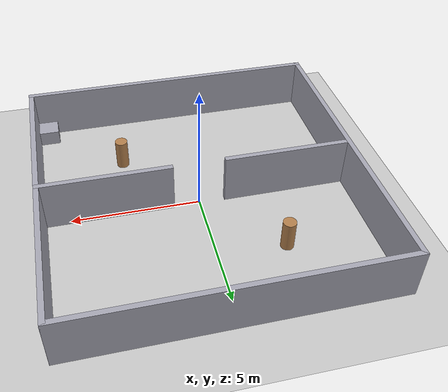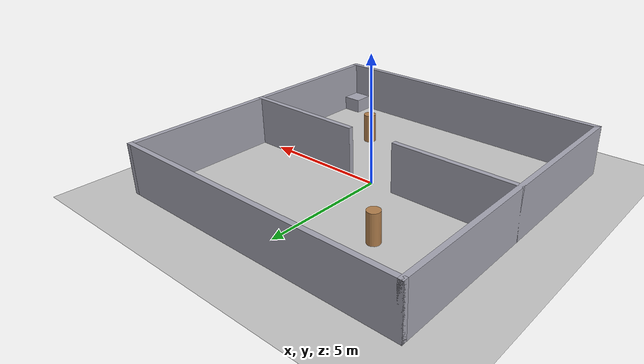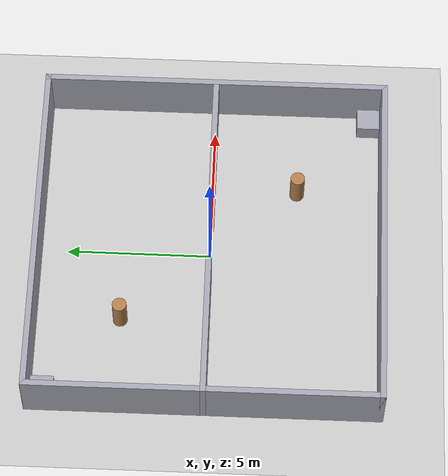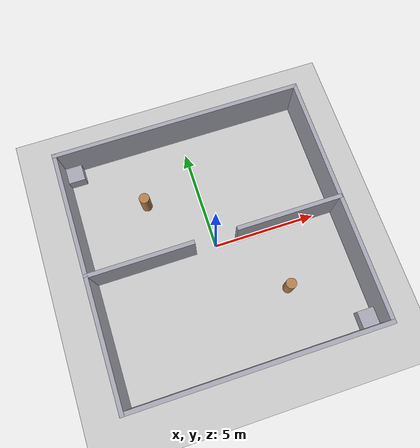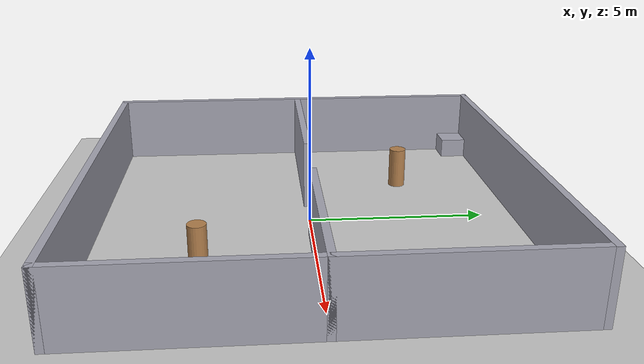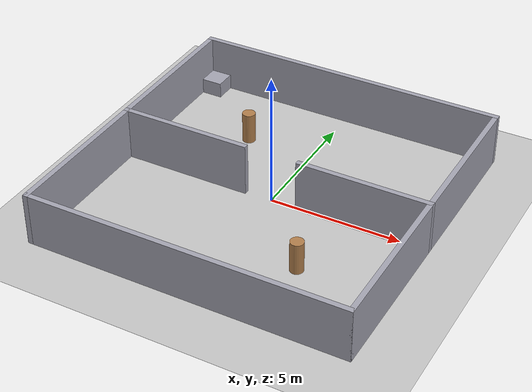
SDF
<?xml version="1.0" ?>
<sdf version="1.9">
  <world name="testworld_simple">
    <gravity>0 0 -9.81</gravity>
    <physics name="1ms" type="ignored">
      <max_step_size>0.010</max_step_size>
      <real_time_factor>1.0</real_time_factor>
    </physics>

    <plugin
      filename="gz-sim-physics-system"
      name="gz::sim::systems::Physics" />
    <plugin
      filename="gz-sim-user-commands-system"
      name="gz::sim::systems::UserCommands" />
    <plugin
      filename="gz-sim-scene-broadcaster-system"
      name="gz::sim::systems::SceneBroadcaster" />
    <plugin
      filename="gz-sim-contact-system"
      name="gz::sim::systems::Contact" />
    <plugin
      filename="gz-sim-imu-system"
      name="gz::sim::systems::Imu" />
    <plugin
      filename="gz-sim-sensors-system"
      name="gz::sim::systems::Sensors">
      <render_engine>ogre2</render_engine>
    </plugin>

    <light name="sun" type="directional">
      <cast_shadows>false</cast_shadows>
      <pose>0 0 12 0 0 0</pose>
      <diffuse>0.8 0.8 0.8 1</diffuse>
      <specular>0.2 0.2 0.2 1</specular>
      <attenuation>
        <range>1000</range>
        <constant>0.9</constant>
        <linear>0.01</linear>
        <quadratic>0.001</quadratic>
      </attenuation>
      <direction>-0.5 0.1 -0.9</direction>
    </light>

    <model name="ground_plane">
      <static>true</static>
      <link name="link">
        <collision name="collision">
          <geometry>
            <plane>
              <normal>0 0 1</normal>
              <size>60 60</size>
            </plane>
          </geometry>
        </collision>
        <visual name="visual">
          <geometry>
            <plane>
              <normal>0 0 1</normal>
              <size>60 60</size>
            </plane>
          </geometry>
          <material>
            <ambient>0.78 0.78 0.78 1</ambient>
            <diffuse>0.78 0.78 0.78 1</diffuse>
          </material>
        </visual>
      </link>
    </model>

    <model name="outer_wall_north">
      <static>true</static>
      <pose>0 6 1.0 0 0 0.0</pose>
      <link name="link">
        <collision name="collision"><geometry><box><size>12.2 0.2 2.0</size></box></geometry></collision>
        <visual name="visual">
          <geometry><box><size>12.2 0.2 2.0</size></box></geometry>
          <material><ambient>0.55 0.55 0.6 1</ambient><diffuse>0.65 0.65 0.7 1</diffuse></material>
        </visual>
      </link>
    </model>

    <model name="outer_wall_south">
      <static>true</static>
      <pose>0 -6 1.0 0 0 0.0</pose>
      <link name="link">
        <collision name="collision"><geometry><box><size>12.2 0.2 2.0</size></box></geometry></collision>
        <visual name="visual">
          <geometry><box><size>12.2 0.2 2.0</size></box></geometry>
          <material><ambient>0.55 0.55 0.6 1</ambient><diffuse>0.65 0.65 0.7 1</diffuse></material>
        </visual>
      </link>
    </model>

    <model name="outer_wall_east">
      <static>true</static>
      <pose>6 0 1.0 0 0 0.0</pose>
      <link name="link">
        <collision name="collision"><geometry><box><size>0.2 12.2 2.0</size></box></geometry></collision>
        <visual name="visual">
          <geometry><box><size>0.2 12.2 2.0</size></box></geometry>
          <material><ambient>0.55 0.55 0.6 1</ambient><diffuse>0.65 0.65 0.7 1</diffuse></material>
        </visual>
      </link>
    </model>

    <model name="outer_wall_west">
      <static>true</static>
      <pose>-6 0 1.0 0 0 0.0</pose>
      <link name="link">
        <collision name="collision"><geometry><box><size>0.2 12.2 2.0</size></box></geometry></collision>
        <visual name="visual">
          <geometry><box><size>0.2 12.2 2.0</size></box></geometry>
          <material><ambient>0.55 0.55 0.6 1</ambient><diffuse>0.65 0.65 0.7 1</diffuse></material>
        </visual>
      </link>
    </model>

    <model name="divider_west">
      <static>true</static>
      <pose>-3.55 0 1.0 0 0 0.0</pose>
      <link name="link">
        <collision name="collision"><geometry><box><size>5.1 0.2 2.0</size></box></geometry></collision>
        <visual name="visual">
          <geometry><box><size>5.1 0.2 2.0</size></box></geometry>
          <material><ambient>0.55 0.55 0.6 1</ambient><diffuse>0.65 0.65 0.7 1</diffuse></material>
        </visual>
      </link>
    </model>

    <model name="divider_east">
      <static>true</static>
      <pose>3.55 0 1.0 0 0 0.0</pose>
      <link name="link">
        <collision name="collision"><geometry><box><size>5.1 0.2 2.0</size></box></geometry></collision>
        <visual name="visual">
          <geometry><box><size>5.1 0.2 2.0</size></box></geometry>
          <material><ambient>0.55 0.55 0.6 1</ambient><diffuse>0.65 0.65 0.7 1</diffuse></material>
        </visual>
      </link>
    </model>

    <model name="pillar_north">
      <static>true</static>
      <pose>-2.6 3.0 0.6 0 0 0</pose>
      <link name="link">
        <collision name="collision"><geometry><cylinder><radius>0.25</radius><length>1.2</length></cylinder></geometry></collision>
        <visual name="visual">
          <geometry><cylinder><radius>0.25</radius><length>1.2</length></cylinder></geometry>
          <material><ambient>0.6 0.4 0.25 1</ambient><diffuse>0.7 0.5 0.3 1</diffuse></material>
        </visual>
      </link>
    </model>

    <model name="pillar_south">
      <static>true</static>
      <pose>2.6 -3.0 0.6 0 0 0</pose>
      <link name="link">
        <collision name="collision"><geometry><cylinder><radius>0.25</radius><length>1.2</length></cylinder></geometry></collision>
        <visual name="visual">
          <geometry><cylinder><radius>0.25</radius><length>1.2</length></cylinder></geometry>
          <material><ambient>0.6 0.4 0.25 1</ambient><diffuse>0.7 0.5 0.3 1</diffuse></material>
        </visual>
      </link>
    </model>

    <model name="crate_nw">
      <static>true</static>
      <pose>-5.5 5.5 0.3 0 0 0.0</pose>
      <link name="link">
        <collision name="collision"><geometry><box><size>0.8 0.8 0.6</size></box></geometry></collision>
        <visual name="visual">
          <geometry><box><size>0.8 0.8 0.6</size></box></geometry>
          <material><ambient>0.55 0.55 0.6 1</ambient><diffuse>0.65 0.65 0.7 1</diffuse></material>
        </visual>
      </link>
    </model>

    <model name="crate_se">
      <static>true</static>
      <pose>5.5 -5.5 0.3 0 0 0.0</pose>
      <link name="link">
        <collision name="collision"><geometry><box><size>0.8 0.8 0.6</size></box></geometry></collision>
        <visual name="visual">
          <geometry><box><size>0.8 0.8 0.6</size></box></geometry>
          <material><ambient>0.55 0.55 0.6 1</ambient><diffuse>0.65 0.65 0.7 1</diffuse></material>
        </visual>
      </link>
    </model>

  </world>
</sdf>
